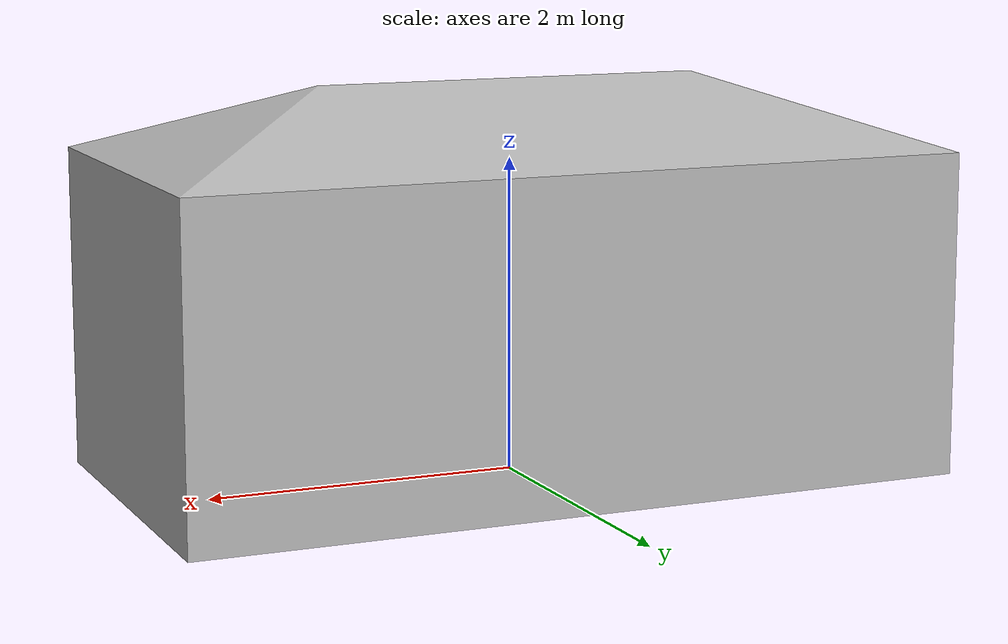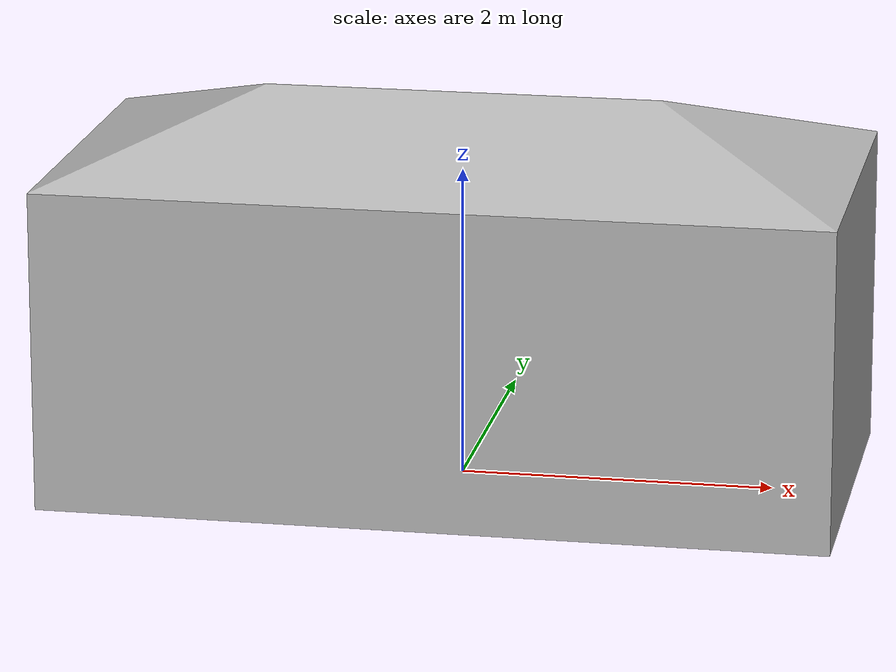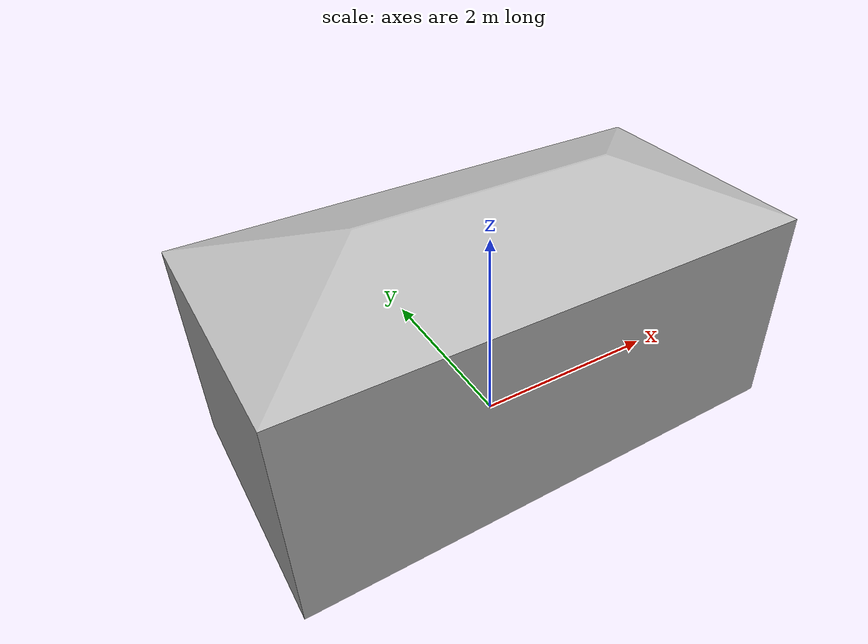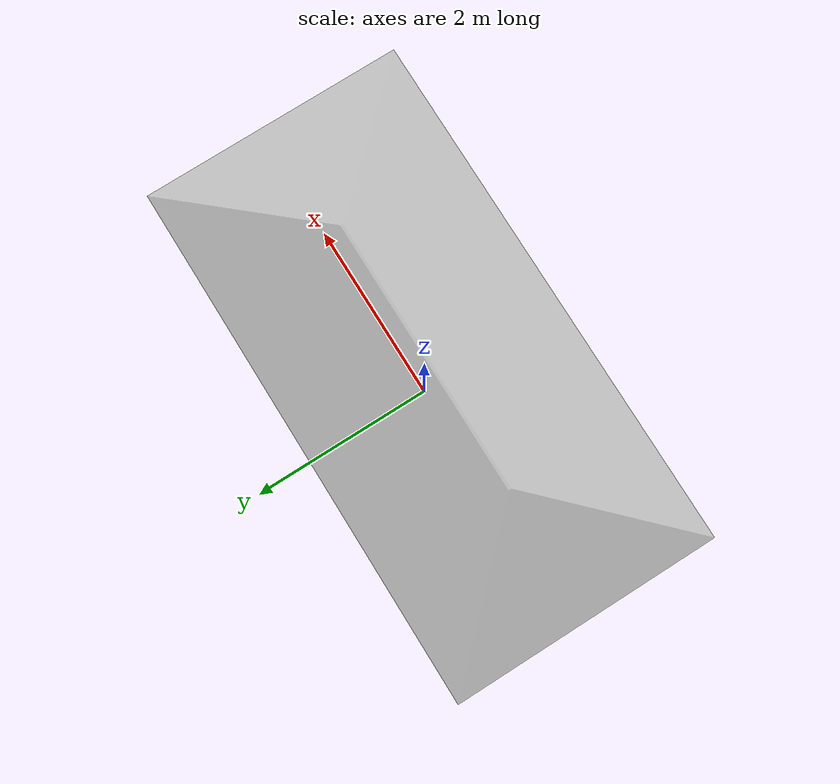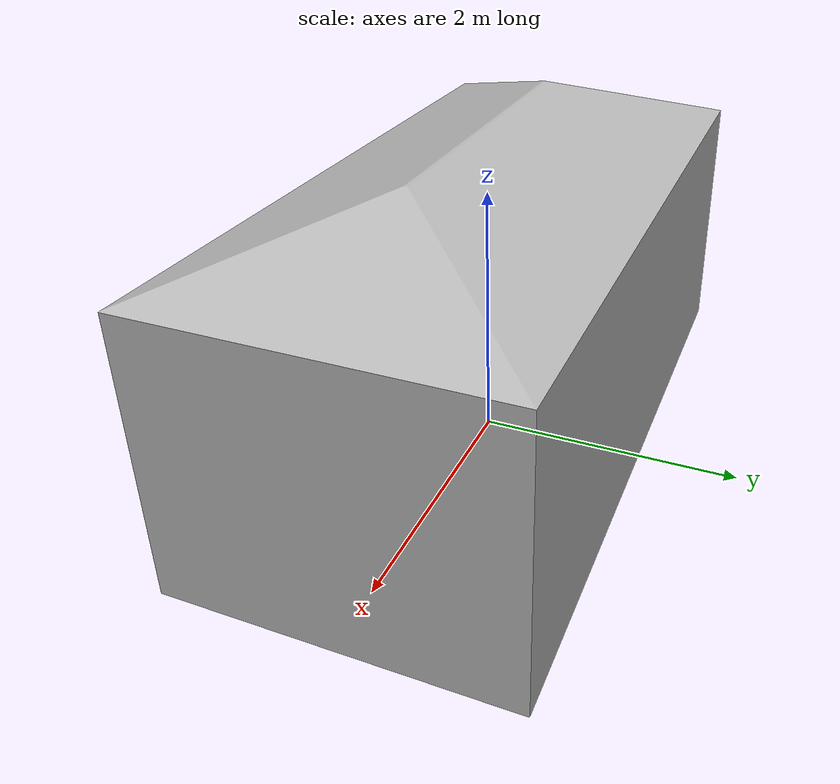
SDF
<sdf version='1.6'>
  <model name='field_house'>
    <link name='field_house'>
      <pose frame=''>0 0 0 0 -0 0</pose>
      <inertial>
        <pose frame=''>-0 0 1.3492 0 -0 0</pose>
        <mass>48478</mass>
        <inertia>
          <ixx>69284</ixx>
          <ixy>-2.1115e-11</ixy>
          <ixz>3.6211e-13</ixz>
          <iyy>164600</iyy>
          <iyz>4.52551e-12</iyz>
          <izz>182570</izz>
        </inertia>
      </inertial>
      <collision name='field_house_collision'>
        <pose frame=''>0 0 0 1.5708 -0 0</pose>
        <geometry>
          <mesh>
            <scale>1 1 1</scale>
            <uri>model://field_house/meshes/field_house.STL</uri>
          </mesh>
        </geometry>
      </collision>
      <visual name='field_house_visual'>
        <pose frame=''>0 0 0 1.5708 -0 0</pose>
        <geometry>
          <mesh>
            <scale>1 1 1</scale>
            <uri>model://field_house/meshes/field_house.STL</uri>
          </mesh>
        </geometry>
      </visual>
    </link>
  </model>
</sdf>
